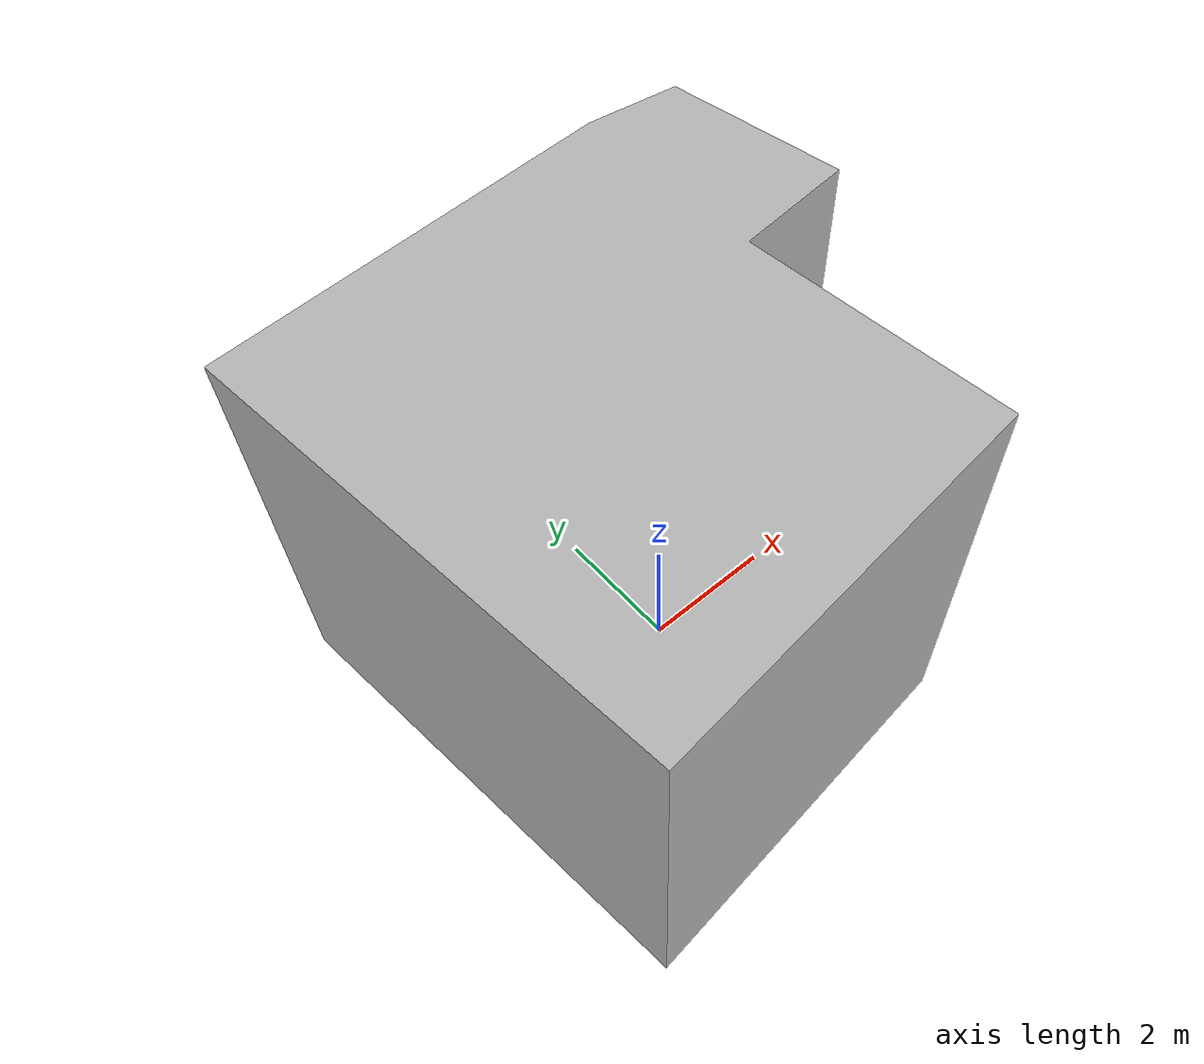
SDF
<?xml version="1.0" ?>
<sdf version="1.7">
  <model name="building_0742_assumed_a_capela">
    <static>true</static>
    <link name="building_link">
      <visual name="building_visual">
        <geometry>
          <mesh>
            <uri>model://building_0742_assumed_a_capela/meshes/construction_0742_assumed_A_Capela_h6m.obj</uri>
          </mesh>
        </geometry>
      </visual>
    <collision name="building_collision">
      <geometry>
        <mesh>
          <uri>model://building_0742_assumed_a_capela/meshes/construction_0742_assumed_A_Capela_h6m.obj</uri>
        </mesh>
      </geometry>
    </collision>
    </link>
  </model>
</sdf>
